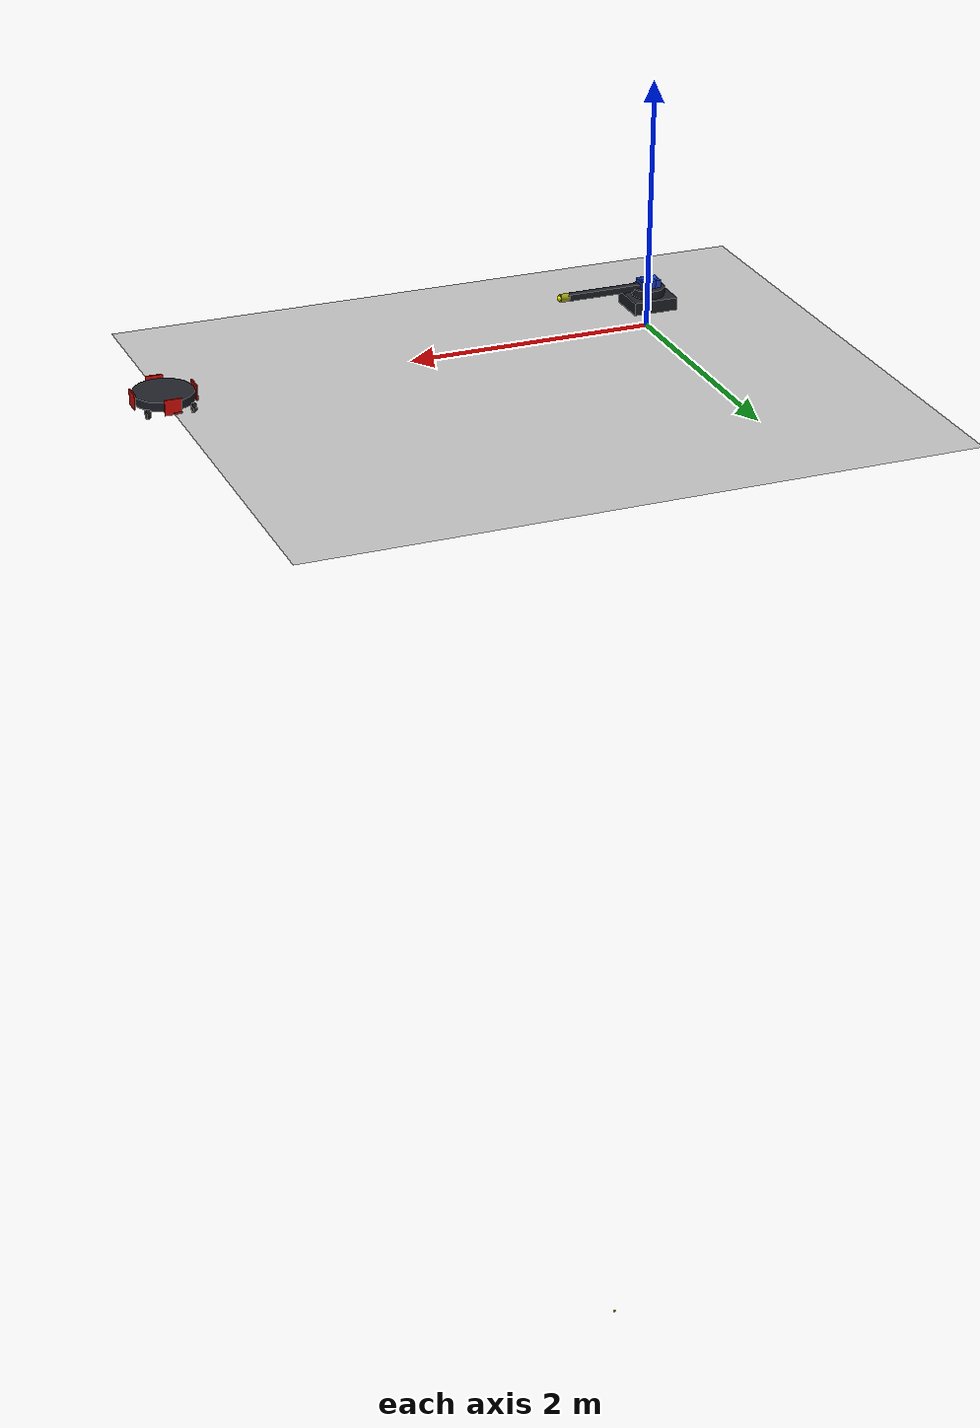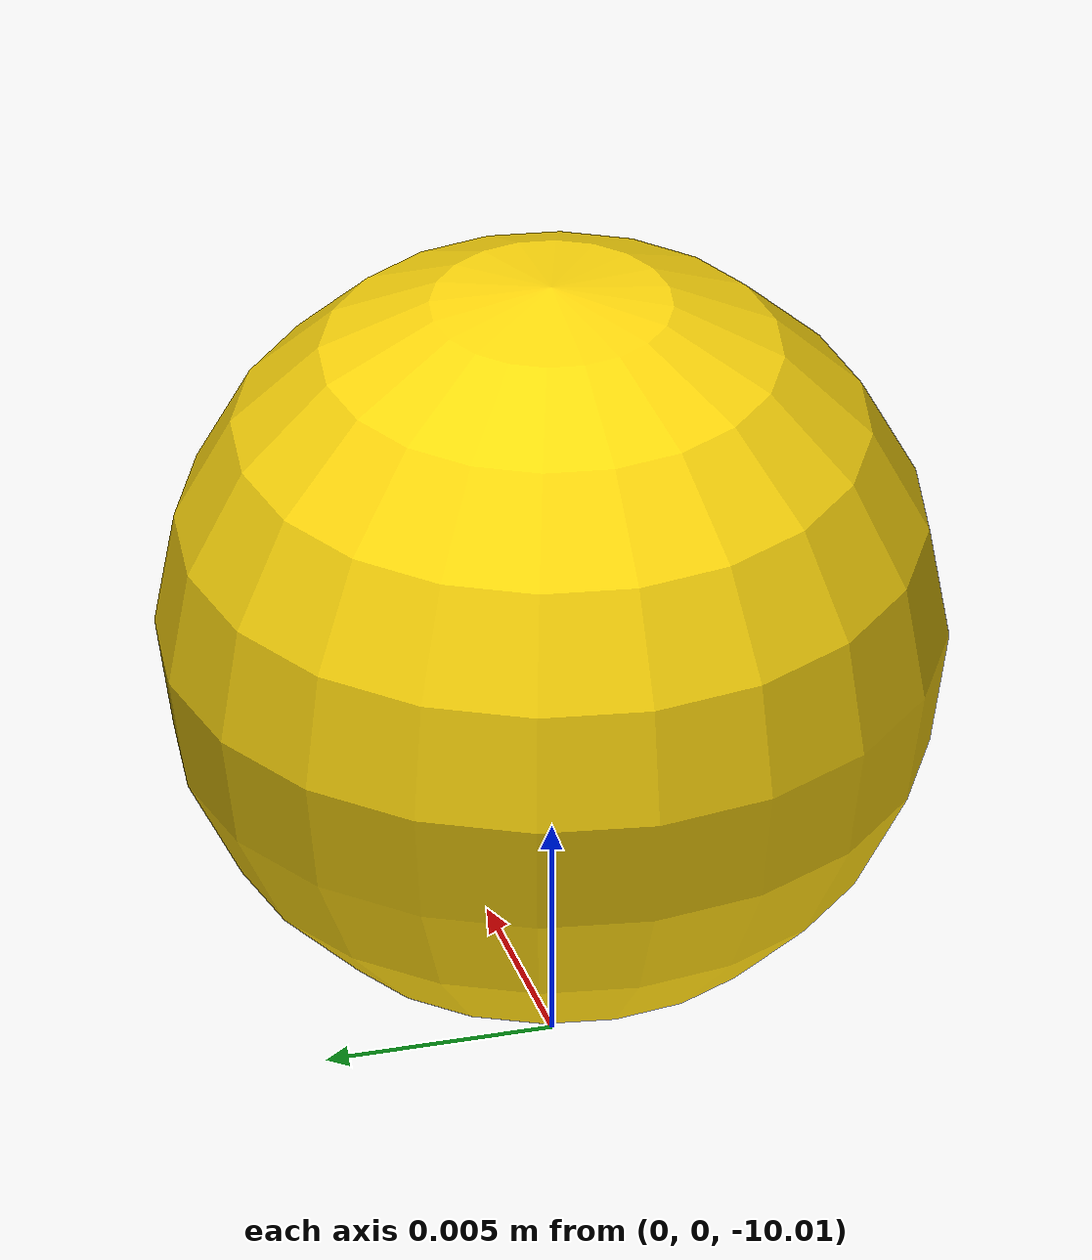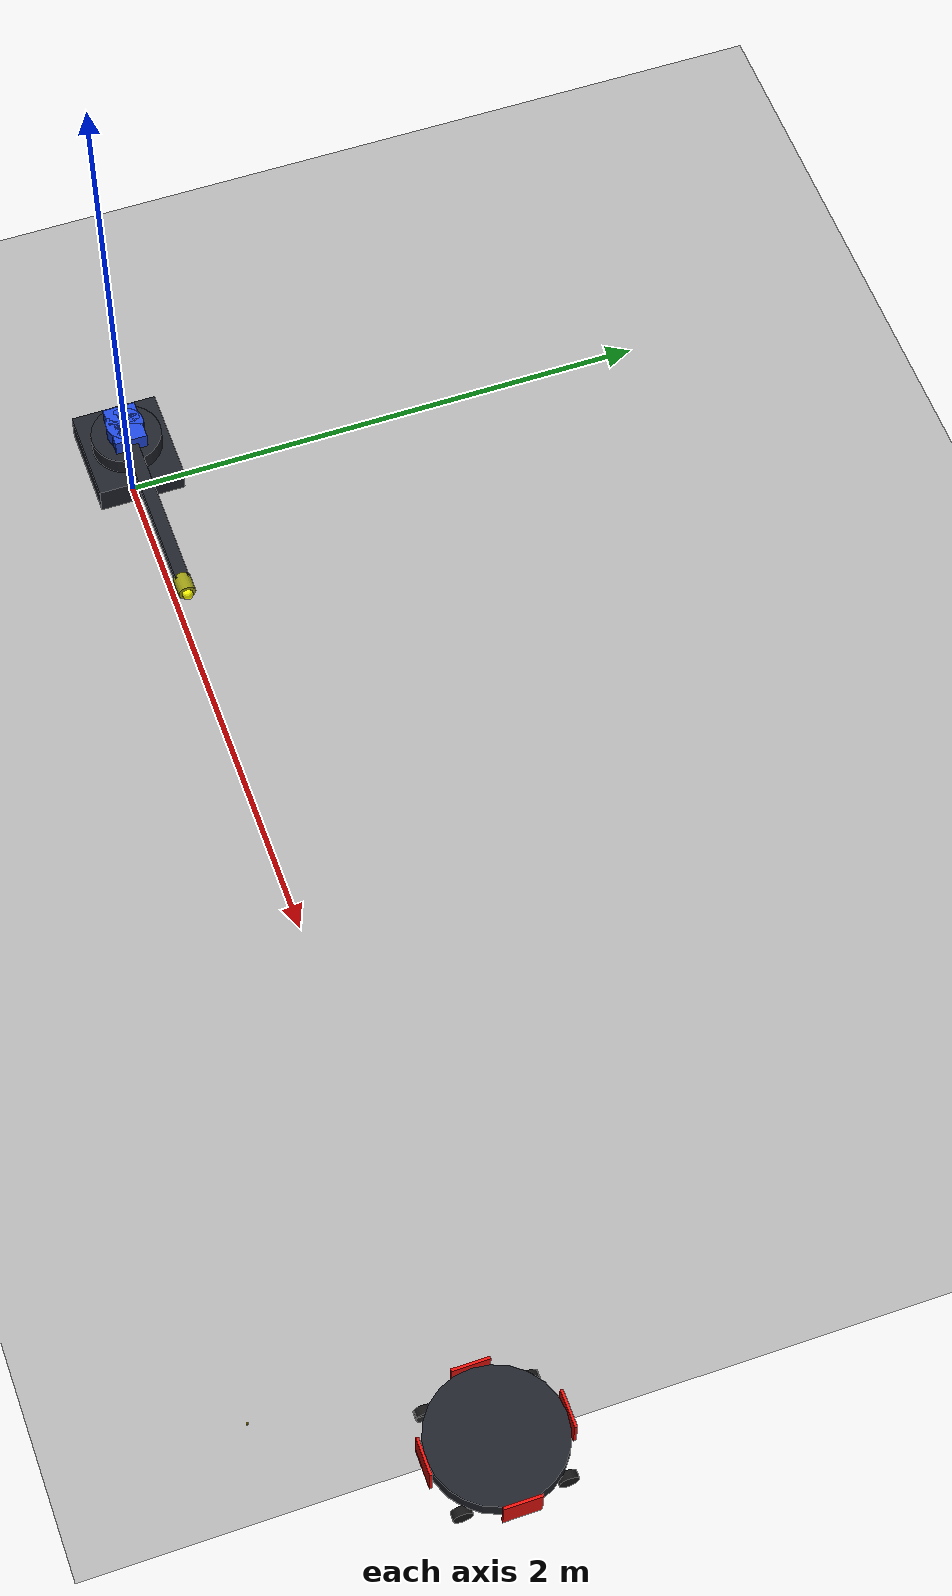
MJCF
<mujoco model="yaw_pitch_gimbal_target">
  <compiler angle="radian" inertiafromgeom="true"/>

  <option timestep="0.002" gravity="0 0 -9.81" iterations="20">
    <flag contact="enable"/>
  </option>

  <visual>
    <global azimuth="135" elevation="-20"/>
    <map znear="0.01" zfar="20"/>
  </visual>

  <asset>
    <texture name="grid" type="2d" builtin="checker" width="512" height="512"
             rgb1="0.18 0.18 0.18" rgb2="0.24 0.24 0.24"/>
    <material name="grid" texture="grid" texrepeat="6 6" reflectance="0.1"/>
    <material name="gimbal_dark" rgba="0.12 0.13 0.16 1"/>
    <material name="gimbal_blue" rgba="0.12 0.28 0.85 1"/>
    <material name="target_red" rgba="1.0 0.08 0.05 1"/>
    <material name="chassis_dark" rgba="0.12 0.13 0.16 1"/>
    <material name="wheel_dark" rgba="0.08 0.08 0.08 1"/>
    <material name="red_plate" rgba="0.9 0.06 0.04 1"/>
    <material name="blue_plate" rgba="0.06 0.25 0.85 1"/>
  </asset>

  <default>
    <geom friction="1.0 0.005 0.005" solref="0.02 1" solimp="0.9 0.95 0.001"/>
    <joint damping="0.02" armature="0.002" limited="true"/>
  </default>

  <worldbody>
    <light name="key" pos="0 -3 4" dir="0 0 -1" diffuse="0.8 0.8 0.8"/>
    <light name="fill" pos="-2 2 2" dir="1 -1 -1" diffuse="0.35 0.35 0.35"/>
    <geom name="floor" type="plane" size="4 3 0.05" material="grid"/>

    <!-- Gimbal origin. Barrel/camera look along local +X. -->
    <body name="gimbal_base" pos="0 0 0.30">
      <geom name="base_box" type="box" size="0.18 0.16 0.05" pos="0 0 -0.08" material="gimbal_dark" mass="2.0"/>
      <geom name="yaw_ring" type="cylinder" size="0.13 0.035" material="gimbal_dark" mass="0.5"/>

      <body name="yaw_link" pos="0 0 0.04">
        <joint name="yaw" type="hinge" axis="0 0 1" range="-2.8 2.8" damping="0.02" armature="0.002"/>
        <geom name="yaw_hub" type="cylinder" size="0.07 0.055" material="gimbal_blue" mass="0.6"/>

        <body name="pitch_link" pos="0 0 0">
          <joint name="pitch" type="hinge" axis="0 -1 0" range="-0.8 0.8" damping="0.02" armature="0.002"/>
          <geom name="pitch_housing" type="box" size="0.08 0.06 0.055" material="gimbal_blue" mass="0.45"/>
          <geom name="barrel" type="box" size="0.38 0.025 0.025" pos="0.32 0 0" material="gimbal_dark" mass="0.35"/>
          <geom name="muzzle" type="cylinder" size="0.032 0.035" pos="0.72 0 0" euler="0 1.57079632679 0" rgba="0.6 0.6 0.08 1" mass="0.05"/>
          <site name="muzzle_site" pos="0.76 0 0" size="0.02" rgba="1 1 0 1"/>
          <!-- Camera frame: camera looks along -Z. Mount it above the barrel and tilt down so the sight dot stays visible. -->
          <camera name="gimbal_pov" pos="0.10 0 0.12" xyaxes="0 -1 0 0.139173 0 0.990268" fovy="55"/>
        </body>
      </body>
    </body>

    <body name="target" pos="4 0 0.015" mocap="true">
      <!-- Chassis cylinder (r=0.24, h=0.07) -->
      <geom name="chassis" type="cylinder" size="0.24 0.035" pos="0 0 0.02" material="chassis_dark"/>
      <geom name="armor_0" type="box" size="0.005 0.0675 0.0625" pos="0 0.245 0.02" euler="0 0 1.5708" material="red_plate"/>
      <geom name="armor_1" type="box" size="0.005 0.0675 0.0625" pos="0.245 0 0.02" material="red_plate"/>
      <geom name="armor_2" type="box" size="0.005 0.0675 0.0625" pos="0 -0.245 0.02" euler="0 0 1.5708" material="red_plate"/>
      <geom name="armor_3" type="box" size="0.005 0.0675 0.0625" pos="-0.245 0 0.02" material="red_plate"/>
      <!-- Fake wheels (4 at corners, below chassis) -->
      <geom name="wheel_0" type="cylinder" size="0.035 0.015" pos="0.18 0.18 -0.04" euler="0 1.5708 0" material="wheel_dark"/>
      <geom name="wheel_1" type="cylinder" size="0.035 0.015" pos="0.18 -0.18 -0.04" euler="0 1.5708 0" material="wheel_dark"/>
      <geom name="wheel_2" type="cylinder" size="0.035 0.015" pos="-0.18 0.18 -0.04" euler="0 1.5708 0" material="wheel_dark"/>
      <geom name="wheel_3" type="cylinder" size="0.035 0.015" pos="-0.18 -0.18 -0.04" euler="0 1.5708 0" material="wheel_dark"/>
      <site name="target_site" pos="0 0 0.02" size="0.02" rgba="1 0 0 0.7"/>
    </body>

    <body name="bullet_0" pos="0 0 -10" mocap="true"><geom type="sphere" size="0.0085" rgba="1 0.85 0.05 1" contype="0" conaffinity="0"/></body>
    <body name="bullet_1" pos="0 0 -10" mocap="true"><geom type="sphere" size="0.0085" rgba="1 0.85 0.05 1" contype="0" conaffinity="0"/></body>
    <body name="bullet_2" pos="0 0 -10" mocap="true"><geom type="sphere" size="0.0085" rgba="1 0.85 0.05 1" contype="0" conaffinity="0"/></body>
    <body name="bullet_3" pos="0 0 -10" mocap="true"><geom type="sphere" size="0.0085" rgba="1 0.85 0.05 1" contype="0" conaffinity="0"/></body>
    <body name="bullet_4" pos="0 0 -10" mocap="true"><geom type="sphere" size="0.0085" rgba="1 0.85 0.05 1" contype="0" conaffinity="0"/></body>
    <body name="bullet_5" pos="0 0 -10" mocap="true"><geom type="sphere" size="0.0085" rgba="1 0.85 0.05 1" contype="0" conaffinity="0"/></body>
    <body name="bullet_6" pos="0 0 -10" mocap="true"><geom type="sphere" size="0.0085" rgba="1 0.85 0.05 1" contype="0" conaffinity="0"/></body>
    <body name="bullet_7" pos="0 0 -10" mocap="true"><geom type="sphere" size="0.0085" rgba="1 0.85 0.05 1" contype="0" conaffinity="0"/></body>
    <body name="bullet_8" pos="0 0 -10" mocap="true"><geom type="sphere" size="0.0085" rgba="1 0.85 0.05 1" contype="0" conaffinity="0"/></body>
    <body name="bullet_9" pos="0 0 -10" mocap="true"><geom type="sphere" size="0.0085" rgba="1 0.85 0.05 1" contype="0" conaffinity="0"/></body>
    <body name="bullet_10" pos="0 0 -10" mocap="true"><geom type="sphere" size="0.0085" rgba="1 0.85 0.05 1" contype="0" conaffinity="0"/></body>
    <body name="bullet_11" pos="0 0 -10" mocap="true"><geom type="sphere" size="0.0085" rgba="1 0.85 0.05 1" contype="0" conaffinity="0"/></body>
    <body name="bullet_12" pos="0 0 -10" mocap="true"><geom type="sphere" size="0.0085" rgba="1 0.85 0.05 1" contype="0" conaffinity="0"/></body>
    <body name="bullet_13" pos="0 0 -10" mocap="true"><geom type="sphere" size="0.0085" rgba="1 0.85 0.05 1" contype="0" conaffinity="0"/></body>
    <body name="bullet_14" pos="0 0 -10" mocap="true"><geom type="sphere" size="0.0085" rgba="1 0.85 0.05 1" contype="0" conaffinity="0"/></body>
    <body name="bullet_15" pos="0 0 -10" mocap="true"><geom type="sphere" size="0.0085" rgba="1 0.85 0.05 1" contype="0" conaffinity="0"/></body>
    <body name="bullet_16" pos="0 0 -10" mocap="true"><geom type="sphere" size="0.0085" rgba="1 0.85 0.05 1" contype="0" conaffinity="0"/></body>
    <body name="bullet_17" pos="0 0 -10" mocap="true"><geom type="sphere" size="0.0085" rgba="1 0.85 0.05 1" contype="0" conaffinity="0"/></body>
    <body name="bullet_18" pos="0 0 -10" mocap="true"><geom type="sphere" size="0.0085" rgba="1 0.85 0.05 1" contype="0" conaffinity="0"/></body>
    <body name="bullet_19" pos="0 0 -10" mocap="true"><geom type="sphere" size="0.0085" rgba="1 0.85 0.05 1" contype="0" conaffinity="0"/></body>
    <body name="bullet_20" pos="0 0 -10" mocap="true"><geom type="sphere" size="0.0085" rgba="1 0.85 0.05 1" contype="0" conaffinity="0"/></body>
    <body name="bullet_21" pos="0 0 -10" mocap="true"><geom type="sphere" size="0.0085" rgba="1 0.85 0.05 1" contype="0" conaffinity="0"/></body>
    <body name="bullet_22" pos="0 0 -10" mocap="true"><geom type="sphere" size="0.0085" rgba="1 0.85 0.05 1" contype="0" conaffinity="0"/></body>
    <body name="bullet_23" pos="0 0 -10" mocap="true"><geom type="sphere" size="0.0085" rgba="1 0.85 0.05 1" contype="0" conaffinity="0"/></body>
    <body name="bullet_24" pos="0 0 -10" mocap="true"><geom type="sphere" size="0.0085" rgba="1 0.85 0.05 1" contype="0" conaffinity="0"/></body>
    <body name="bullet_25" pos="0 0 -10" mocap="true"><geom type="sphere" size="0.0085" rgba="1 0.85 0.05 1" contype="0" conaffinity="0"/></body>
    <body name="bullet_26" pos="0 0 -10" mocap="true"><geom type="sphere" size="0.0085" rgba="1 0.85 0.05 1" contype="0" conaffinity="0"/></body>
    <body name="bullet_27" pos="0 0 -10" mocap="true"><geom type="sphere" size="0.0085" rgba="1 0.85 0.05 1" contype="0" conaffinity="0"/></body>
    <body name="bullet_28" pos="0 0 -10" mocap="true"><geom type="sphere" size="0.0085" rgba="1 0.85 0.05 1" contype="0" conaffinity="0"/></body>
    <body name="bullet_29" pos="0 0 -10" mocap="true"><geom type="sphere" size="0.0085" rgba="1 0.85 0.05 1" contype="0" conaffinity="0"/></body>
    <body name="bullet_30" pos="0 0 -10" mocap="true"><geom type="sphere" size="0.0085" rgba="1 0.85 0.05 1" contype="0" conaffinity="0"/></body>
    <body name="bullet_31" pos="0 0 -10" mocap="true"><geom type="sphere" size="0.0085" rgba="1 0.85 0.05 1" contype="0" conaffinity="0"/></body>
    <body name="bullet_32" pos="0 0 -10" mocap="true"><geom type="sphere" size="0.0085" rgba="1 0.85 0.05 1" contype="0" conaffinity="0"/></body>
    <body name="bullet_33" pos="0 0 -10" mocap="true"><geom type="sphere" size="0.0085" rgba="1 0.85 0.05 1" contype="0" conaffinity="0"/></body>
    <body name="bullet_34" pos="0 0 -10" mocap="true"><geom type="sphere" size="0.0085" rgba="1 0.85 0.05 1" contype="0" conaffinity="0"/></body>
    <body name="bullet_35" pos="0 0 -10" mocap="true"><geom type="sphere" size="0.0085" rgba="1 0.85 0.05 1" contype="0" conaffinity="0"/></body>
    <body name="bullet_36" pos="0 0 -10" mocap="true"><geom type="sphere" size="0.0085" rgba="1 0.85 0.05 1" contype="0" conaffinity="0"/></body>
    <body name="bullet_37" pos="0 0 -10" mocap="true"><geom type="sphere" size="0.0085" rgba="1 0.85 0.05 1" contype="0" conaffinity="0"/></body>
    <body name="bullet_38" pos="0 0 -10" mocap="true"><geom type="sphere" size="0.0085" rgba="1 0.85 0.05 1" contype="0" conaffinity="0"/></body>
    <body name="bullet_39" pos="0 0 -10" mocap="true"><geom type="sphere" size="0.0085" rgba="1 0.85 0.05 1" contype="0" conaffinity="0"/></body>
    <body name="bullet_40" pos="0 0 -10" mocap="true"><geom type="sphere" size="0.0085" rgba="1 0.85 0.05 1" contype="0" conaffinity="0"/></body>
    <body name="bullet_41" pos="0 0 -10" mocap="true"><geom type="sphere" size="0.0085" rgba="1 0.85 0.05 1" contype="0" conaffinity="0"/></body>
    <body name="bullet_42" pos="0 0 -10" mocap="true"><geom type="sphere" size="0.0085" rgba="1 0.85 0.05 1" contype="0" conaffinity="0"/></body>
    <body name="bullet_43" pos="0 0 -10" mocap="true"><geom type="sphere" size="0.0085" rgba="1 0.85 0.05 1" contype="0" conaffinity="0"/></body>
    <body name="bullet_44" pos="0 0 -10" mocap="true"><geom type="sphere" size="0.0085" rgba="1 0.85 0.05 1" contype="0" conaffinity="0"/></body>
    <body name="bullet_45" pos="0 0 -10" mocap="true"><geom type="sphere" size="0.0085" rgba="1 0.85 0.05 1" contype="0" conaffinity="0"/></body>
    <body name="bullet_46" pos="0 0 -10" mocap="true"><geom type="sphere" size="0.0085" rgba="1 0.85 0.05 1" contype="0" conaffinity="0"/></body>
    <body name="bullet_47" pos="0 0 -10" mocap="true"><geom type="sphere" size="0.0085" rgba="1 0.85 0.05 1" contype="0" conaffinity="0"/></body>
    <body name="bullet_48" pos="0 0 -10" mocap="true"><geom type="sphere" size="0.0085" rgba="1 0.85 0.05 1" contype="0" conaffinity="0"/></body>
    <body name="bullet_49" pos="0 0 -10" mocap="true"><geom type="sphere" size="0.0085" rgba="1 0.85 0.05 1" contype="0" conaffinity="0"/></body>
    <body name="bullet_50" pos="0 0 -10" mocap="true"><geom type="sphere" size="0.0085" rgba="1 0.85 0.05 1" contype="0" conaffinity="0"/></body>
    <body name="bullet_51" pos="0 0 -10" mocap="true"><geom type="sphere" size="0.0085" rgba="1 0.85 0.05 1" contype="0" conaffinity="0"/></body>
    <body name="bullet_52" pos="0 0 -10" mocap="true"><geom type="sphere" size="0.0085" rgba="1 0.85 0.05 1" contype="0" conaffinity="0"/></body>
    <body name="bullet_53" pos="0 0 -10" mocap="true"><geom type="sphere" size="0.0085" rgba="1 0.85 0.05 1" contype="0" conaffinity="0"/></body>
    <body name="bullet_54" pos="0 0 -10" mocap="true"><geom type="sphere" size="0.0085" rgba="1 0.85 0.05 1" contype="0" conaffinity="0"/></body>
    <body name="bullet_55" pos="0 0 -10" mocap="true"><geom type="sphere" size="0.0085" rgba="1 0.85 0.05 1" contype="0" conaffinity="0"/></body>
    <body name="bullet_56" pos="0 0 -10" mocap="true"><geom type="sphere" size="0.0085" rgba="1 0.85 0.05 1" contype="0" conaffinity="0"/></body>
    <body name="bullet_57" pos="0 0 -10" mocap="true"><geom type="sphere" size="0.0085" rgba="1 0.85 0.05 1" contype="0" conaffinity="0"/></body>
    <body name="bullet_58" pos="0 0 -10" mocap="true"><geom type="sphere" size="0.0085" rgba="1 0.85 0.05 1" contype="0" conaffinity="0"/></body>
    <body name="bullet_59" pos="0 0 -10" mocap="true"><geom type="sphere" size="0.0085" rgba="1 0.85 0.05 1" contype="0" conaffinity="0"/></body>
    <body name="bullet_60" pos="0 0 -10" mocap="true"><geom type="sphere" size="0.0085" rgba="1 0.85 0.05 1" contype="0" conaffinity="0"/></body>
    <body name="bullet_61" pos="0 0 -10" mocap="true"><geom type="sphere" size="0.0085" rgba="1 0.85 0.05 1" contype="0" conaffinity="0"/></body>
    <body name="bullet_62" pos="0 0 -10" mocap="true"><geom type="sphere" size="0.0085" rgba="1 0.85 0.05 1" contype="0" conaffinity="0"/></body>
    <body name="bullet_63" pos="0 0 -10" mocap="true"><geom type="sphere" size="0.0085" rgba="1 0.85 0.05 1" contype="0" conaffinity="0"/></body>
    <body name="bullet_64" pos="0 0 -10" mocap="true"><geom type="sphere" size="0.0085" rgba="1 0.85 0.05 1" contype="0" conaffinity="0"/></body>
    <body name="bullet_65" pos="0 0 -10" mocap="true"><geom type="sphere" size="0.0085" rgba="1 0.85 0.05 1" contype="0" conaffinity="0"/></body>
    <body name="bullet_66" pos="0 0 -10" mocap="true"><geom type="sphere" size="0.0085" rgba="1 0.85 0.05 1" contype="0" conaffinity="0"/></body>
    <body name="bullet_67" pos="0 0 -10" mocap="true"><geom type="sphere" size="0.0085" rgba="1 0.85 0.05 1" contype="0" conaffinity="0"/></body>
    <body name="bullet_68" pos="0 0 -10" mocap="true"><geom type="sphere" size="0.0085" rgba="1 0.85 0.05 1" contype="0" conaffinity="0"/></body>
    <body name="bullet_69" pos="0 0 -10" mocap="true"><geom type="sphere" size="0.0085" rgba="1 0.85 0.05 1" contype="0" conaffinity="0"/></body>
    <body name="bullet_70" pos="0 0 -10" mocap="true"><geom type="sphere" size="0.0085" rgba="1 0.85 0.05 1" contype="0" conaffinity="0"/></body>
    <body name="bullet_71" pos="0 0 -10" mocap="true"><geom type="sphere" size="0.0085" rgba="1 0.85 0.05 1" contype="0" conaffinity="0"/></body>
    <body name="bullet_72" pos="0 0 -10" mocap="true"><geom type="sphere" size="0.0085" rgba="1 0.85 0.05 1" contype="0" conaffinity="0"/></body>
    <body name="bullet_73" pos="0 0 -10" mocap="true"><geom type="sphere" size="0.0085" rgba="1 0.85 0.05 1" contype="0" conaffinity="0"/></body>
    <body name="bullet_74" pos="0 0 -10" mocap="true"><geom type="sphere" size="0.0085" rgba="1 0.85 0.05 1" contype="0" conaffinity="0"/></body>
    <body name="bullet_75" pos="0 0 -10" mocap="true"><geom type="sphere" size="0.0085" rgba="1 0.85 0.05 1" contype="0" conaffinity="0"/></body>
    <body name="bullet_76" pos="0 0 -10" mocap="true"><geom type="sphere" size="0.0085" rgba="1 0.85 0.05 1" contype="0" conaffinity="0"/></body>
    <body name="bullet_77" pos="0 0 -10" mocap="true"><geom type="sphere" size="0.0085" rgba="1 0.85 0.05 1" contype="0" conaffinity="0"/></body>
    <body name="bullet_78" pos="0 0 -10" mocap="true"><geom type="sphere" size="0.0085" rgba="1 0.85 0.05 1" contype="0" conaffinity="0"/></body>
    <body name="bullet_79" pos="0 0 -10" mocap="true"><geom type="sphere" size="0.0085" rgba="1 0.85 0.05 1" contype="0" conaffinity="0"/></body>
    <body name="bullet_80" pos="0 0 -10" mocap="true"><geom type="sphere" size="0.0085" rgba="1 0.85 0.05 1" contype="0" conaffinity="0"/></body>
    <body name="bullet_81" pos="0 0 -10" mocap="true"><geom type="sphere" size="0.0085" rgba="1 0.85 0.05 1" contype="0" conaffinity="0"/></body>
    <body name="bullet_82" pos="0 0 -10" mocap="true"><geom type="sphere" size="0.0085" rgba="1 0.85 0.05 1" contype="0" conaffinity="0"/></body>
    <body name="bullet_83" pos="0 0 -10" mocap="true"><geom type="sphere" size="0.0085" rgba="1 0.85 0.05 1" contype="0" conaffinity="0"/></body>
    <body name="bullet_84" pos="0 0 -10" mocap="true"><geom type="sphere" size="0.0085" rgba="1 0.85 0.05 1" contype="0" conaffinity="0"/></body>
    <body name="bullet_85" pos="0 0 -10" mocap="true"><geom type="sphere" size="0.0085" rgba="1 0.85 0.05 1" contype="0" conaffinity="0"/></body>
    <body name="bullet_86" pos="0 0 -10" mocap="true"><geom type="sphere" size="0.0085" rgba="1 0.85 0.05 1" contype="0" conaffinity="0"/></body>
    <body name="bullet_87" pos="0 0 -10" mocap="true"><geom type="sphere" size="0.0085" rgba="1 0.85 0.05 1" contype="0" conaffinity="0"/></body>
    <body name="bullet_88" pos="0 0 -10" mocap="true"><geom type="sphere" size="0.0085" rgba="1 0.85 0.05 1" contype="0" conaffinity="0"/></body>
    <body name="bullet_89" pos="0 0 -10" mocap="true"><geom type="sphere" size="0.0085" rgba="1 0.85 0.05 1" contype="0" conaffinity="0"/></body>
    <body name="bullet_90" pos="0 0 -10" mocap="true"><geom type="sphere" size="0.0085" rgba="1 0.85 0.05 1" contype="0" conaffinity="0"/></body>
    <body name="bullet_91" pos="0 0 -10" mocap="true"><geom type="sphere" size="0.0085" rgba="1 0.85 0.05 1" contype="0" conaffinity="0"/></body>
    <body name="bullet_92" pos="0 0 -10" mocap="true"><geom type="sphere" size="0.0085" rgba="1 0.85 0.05 1" contype="0" conaffinity="0"/></body>
    <body name="bullet_93" pos="0 0 -10" mocap="true"><geom type="sphere" size="0.0085" rgba="1 0.85 0.05 1" contype="0" conaffinity="0"/></body>
    <body name="bullet_94" pos="0 0 -10" mocap="true"><geom type="sphere" size="0.0085" rgba="1 0.85 0.05 1" contype="0" conaffinity="0"/></body>
    <body name="bullet_95" pos="0 0 -10" mocap="true"><geom type="sphere" size="0.0085" rgba="1 0.85 0.05 1" contype="0" conaffinity="0"/></body>
    <body name="bullet_96" pos="0 0 -10" mocap="true"><geom type="sphere" size="0.0085" rgba="1 0.85 0.05 1" contype="0" conaffinity="0"/></body>
    <body name="bullet_97" pos="0 0 -10" mocap="true"><geom type="sphere" size="0.0085" rgba="1 0.85 0.05 1" contype="0" conaffinity="0"/></body>
    <body name="bullet_98" pos="0 0 -10" mocap="true"><geom type="sphere" size="0.0085" rgba="1 0.85 0.05 1" contype="0" conaffinity="0"/></body>
    <body name="bullet_99" pos="0 0 -10" mocap="true"><geom type="sphere" size="0.0085" rgba="1 0.85 0.05 1" contype="0" conaffinity="0"/></body>
  </worldbody>

  <actuator>
    <velocity name="yaw_motor" joint="yaw" kv="45" ctrlrange="-4 4" ctrllimited="true"/>
    <velocity name="pitch_motor" joint="pitch" kv="45" ctrlrange="-4 4" ctrllimited="true"/>
  </actuator>

  <sensor>
    <jointpos name="yaw_enc" joint="yaw"/>
    <jointpos name="pitch_enc" joint="pitch"/>
    <jointvel name="yaw_vel" joint="yaw"/>
    <jointvel name="pitch_vel" joint="pitch"/>
    <framepos name="muzzle_pos" objtype="site" objname="muzzle_site"/>
    <framexaxis name="muzzle_xaxis" objtype="site" objname="muzzle_site"/>
    <framepos name="target_pos" objtype="site" objname="target_site"/>
  </sensor>
</mujoco>
